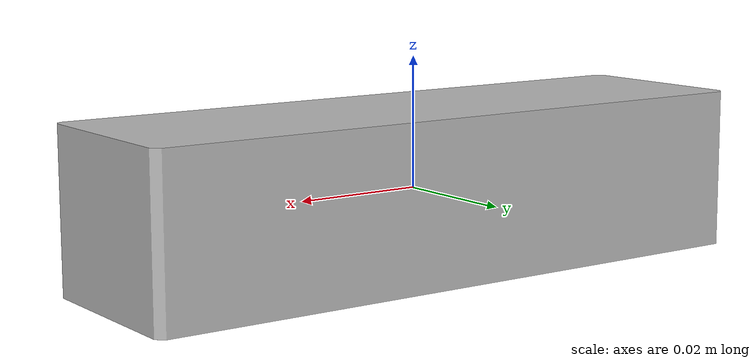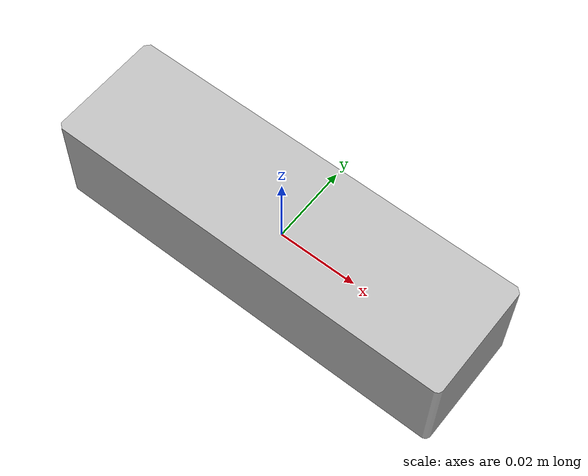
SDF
<?xml version="1.0"?>
<sdf version="1.7">
  <model name="push_i_glyph_controller">
    <link name="c_glyph_base">
      <inertial><pose>0.000002 -0.000001 0 0 0 0</pose><mass>0.041276311</mass>
        <inertia><ixx>5.199951157e-06</ixx><iyy>3.858549978e-05</iyy><izz>3.948583522e-05</izz><ixy>0</ixy><ixz>0</ixz><iyz>0</iyz></inertia></inertial>
      <visual name="hull_visual"><pose>0 0 0 0 0 0</pose>
        <geometry><mesh><uri>icra_glyphs/dynamic/I_prism.obj</uri></mesh></geometry>
      </visual>
      <collision name="hull_collision"><pose>0 0 0 0 0 0</pose>
        <geometry><mesh><uri>icra_glyphs/dynamic/I_prism.obj</uri><drake:declare_convex/></mesh></geometry>
        <surface><friction><ode><mu>0.3</mu><mu2>0.3</mu2></ode></friction></surface>
        <drake:proximity_properties><drake:mu_static>0.3</drake:mu_static><drake:mu_dynamic>0.3</drake:mu_dynamic></drake:proximity_properties>
      </collision>
      <collision name="witness_0"><pose>0.049568 0.013282 -0.0115 0 0 0</pose>
        <geometry><sphere><radius>0.001</radius></sphere></geometry></collision>
      <collision name="witness_1"><pose>-0.048482 0.014333 -0.0115 0 0 0</pose>
        <geometry><sphere><radius>0.001</radius></sphere></geometry></collision>
      <collision name="witness_2"><pose>-0.048482 -0.014333 -0.0115 0 0 0</pose>
        <geometry><sphere><radius>0.001</radius></sphere></geometry></collision>
    </link>
  </model>
</sdf>
